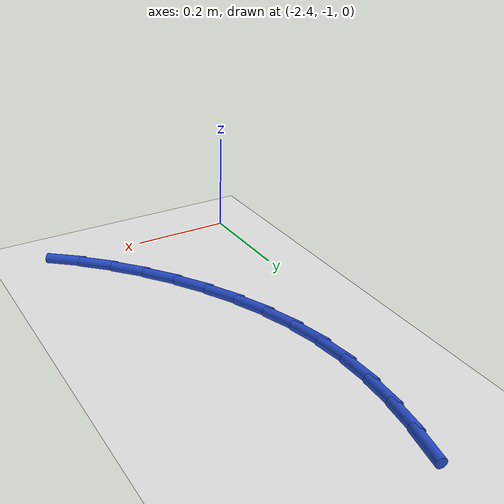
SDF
<sdf version="1.6">
 <world name="default">
  <model name="ground_plane">
   <static>1</static>
   <link name="link">
    <collision name="collision">
     <geometry><plane><normal>0 0 1</normal><size>100 100</size></plane></geometry>
     <surface><friction><ode><mu>100</mu><mu2>50</mu2></ode></friction></surface>
    </collision>
    <visual name="visual">
     <cast_shadows>0</cast_shadows>
     <geometry><plane><normal>0 0 1</normal><size>100 100</size></plane></geometry>
     <material>
      <script><uri>file://media/materials/scripts/gazebo.material</uri><name>Gazebo/WhiteGlow</name></script>
     </material>
    </visual>
   </link>
  </model>
  <model name="line">
   <link name="link_56">
    <pose>-2.2952134746252963 -0.21129996971386072 0.01 0 1.57 1.356294587024776</pose>
    <collision name="collision">
     <geometry><cylinder><radius>0.01</radius><length>0.08</length></cylinder></geometry>
    </collision>
    <visual name="visual">
     <material>
      <script><name>Gazebo/Blue</name><uri>file://media/materials/scripts/gazebo.material</uri></script>
     </material>
     <geometry><cylinder><radius>0.01</radius><length>0.08</length></cylinder></geometry>
    </visual>
   </link>
   <link name="link_57">
    <pose>-2.3088278777687625 -0.27379342905894544 0.01 0 1.57 1.4290223511371474</pose>
    <collision name="collision">
     <geometry><cylinder><radius>0.01</radius><length>0.08</length></cylinder></geometry>
    </collision>
    <visual name="visual">
     <material>
      <script><name>Gazebo/Blue</name><uri>file://media/materials/scripts/gazebo.material</uri></script>
     </material>
     <geometry><cylinder><radius>0.01</radius><length>0.08</length></cylinder></geometry>
    </visual>
   </link>
   <link name="link_58">
    <pose>-2.3177792329284737 -0.33650804884586094 0.01 0 1.57 1.5116011004757508</pose>
    <collision name="collision">
     <geometry><cylinder><radius>0.01</radius><length>0.08</length></cylinder></geometry>
    </collision>
    <visual name="visual">
     <material>
      <script><name>Gazebo/Blue</name><uri>file://media/materials/scripts/gazebo.material</uri></script>
     </material>
     <geometry><cylinder><radius>0.01</radius><length>0.08</length></cylinder></geometry>
    </visual>
   </link>
   <link name="link_59">
    <pose>-2.321508273204446 -0.3994300761393321 0.01 0 1.57 -1.538287474212132</pose>
    <collision name="collision">
     <geometry><cylinder><radius>0.01</radius><length>0.08</length></cylinder></geometry>
    </collision>
    <visual name="visual">
     <material>
      <script><name>Gazebo/Blue</name><uri>file://media/materials/scripts/gazebo.material</uri></script>
     </material>
     <geometry><cylinder><radius>0.01</radius><length>0.08</length></cylinder></geometry>
    </visual>
   </link>
   <link name="link_60">
    <pose>-2.3194557316966966 -0.4625457580040805 0.01 0 1.57 -1.4389592421721236</pose>
    <collision name="collision">
     <geometry><cylinder><radius>0.01</radius><length>0.08</length></cylinder></geometry>
    </collision>
    <visual name="visual">
     <material>
      <script><name>Gazebo/Blue</name><uri>file://media/materials/scripts/gazebo.material</uri></script>
     </material>
     <geometry><cylinder><radius>0.01</radius><length>0.08</length></cylinder></geometry>
    </visual>
   </link>
   <link name="link_61">
    <pose>-2.3110623415052403 -0.5258413415048308 0.01 0 1.57 -1.3353806985456838</pose>
    <collision name="collision">
     <geometry><cylinder><radius>0.01</radius><length>0.08</length></cylinder></geometry>
    </collision>
    <visual name="visual">
     <material>
      <script><name>Gazebo/Blue</name><uri>file://media/materials/scripts/gazebo.material</uri></script>
     </material>
     <geometry><cylinder><radius>0.01</radius><length>0.08</length></cylinder></geometry>
    </visual>
   </link>
   <link name="link_62">
    <pose>-2.2958513293961085 -0.5892567051001844 0.01 0 1.57 -1.2374992130194193</pose>
    <collision name="collision">
     <geometry><cylinder><radius>0.01</radius><length>0.08</length></cylinder></geometry>
    </collision>
    <visual name="visual">
     <material>
      <script><name>Gazebo/Blue</name><uri>file://media/materials/scripts/gazebo.material</uri></script>
     </material>
     <geometry><cylinder><radius>0.01</radius><length>0.08</length></cylinder></geometry>
    </visual>
   </link>
   <link name="link_63">
    <pose>-2.2740033983488535 -0.6523621685050073 0.01 0 1.57 -1.147881405980143</pose>
    <collision name="collision">
     <geometry><cylinder><radius>0.01</radius><length>0.08</length></cylinder></geometry>
    </collision>
    <visual name="visual">
     <material>
      <script><name>Gazebo/Blue</name><uri>file://media/materials/scripts/gazebo.material</uri></script>
     </material>
     <geometry><cylinder><radius>0.01</radius><length>0.08</length></cylinder></geometry>
    </visual>
   </link>
   <link name="link_64">
    <pose>-2.2460137347134075 -0.7145512844623804 0.01 0 1.57 -1.0645629718027039</pose>
    <collision name="collision">
     <geometry><cylinder><radius>0.01</radius><length>0.08</length></cylinder></geometry>
    </collision>
    <visual name="visual">
     <material>
      <script><name>Gazebo/Blue</name><uri>file://media/materials/scripts/gazebo.material</uri></script>
     </material>
     <geometry><cylinder><radius>0.01</radius><length>0.08</length></cylinder></geometry>
    </visual>
   </link>
   <link name="link_65">
    <pose>-2.212379485608318 -0.7752165035931025 0.01 0 1.57 -0.9856475237094384</pose>
    <collision name="collision">
     <geometry><cylinder><radius>0.01</radius><length>0.08</length></cylinder></geometry>
    </collision>
    <visual name="visual">
     <material>
      <script><name>Gazebo/Blue</name><uri>file://media/materials/scripts/gazebo.material</uri></script>
     </material>
     <geometry><cylinder><radius>0.01</radius><length>0.08</length></cylinder></geometry>
    </visual>
   </link>
   <link name="link_66">
    <pose>-2.173597798152132 -0.833750276517971 0.01 0 1.57 -0.9093508060239608</pose>
    <collision name="collision">
     <geometry><cylinder><radius>0.01</radius><length>0.08</length></cylinder></geometry>
    </collision>
    <visual name="visual">
     <material>
      <script><name>Gazebo/Blue</name><uri>file://media/materials/scripts/gazebo.material</uri></script>
     </material>
     <geometry><cylinder><radius>0.01</radius><length>0.08</length></cylinder></geometry>
    </visual>
   </link>
   <link name="link_67">
    <pose>-2.1301658194634 -0.8895450538577825 0.01 0 1.57 -0.8339747988546505</pose>
    <collision name="collision">
     <geometry><cylinder><radius>0.01</radius><length>0.08</length></cylinder></geometry>
    </collision>
    <visual name="visual">
     <material>
      <script><name>Gazebo/Blue</name><uri>file://media/materials/scripts/gazebo.material</uri></script>
     </material>
     <geometry><cylinder><radius>0.01</radius><length>0.08</length></cylinder></geometry>
    </visual>
   </link>
   <link name="link_68">
    <pose>-2.0825806966606675 -0.9419932862333356 0.01 0 1.57 -0.7578623899944177</pose>
    <collision name="collision">
     <geometry><cylinder><radius>0.01</radius><length>0.08</length></cylinder></geometry>
    </collision>
    <visual name="visual">
     <material>
      <script><name>Gazebo/Blue</name><uri>file://media/materials/scripts/gazebo.material</uri></script>
     </material>
     <geometry><cylinder><radius>0.01</radius><length>0.08</length></cylinder></geometry>
    </visual>
   </link>
   <link name="link_69">
    <pose>-2.0313395768624845 -0.9904874242654266 0.01 0 1.57 -0.6793476897259739</pose>
    <collision name="collision">
     <geometry><cylinder><radius>0.01</radius><length>0.08</length></cylinder></geometry>
    </collision>
    <visual name="visual">
     <material>
      <script><name>Gazebo/Blue</name><uri>file://media/materials/scripts/gazebo.material</uri></script>
     </material>
     <geometry><cylinder><radius>0.01</radius><length>0.08</length></cylinder></geometry>
    </visual>
   </link>
  </model>
 </world>
</sdf>
